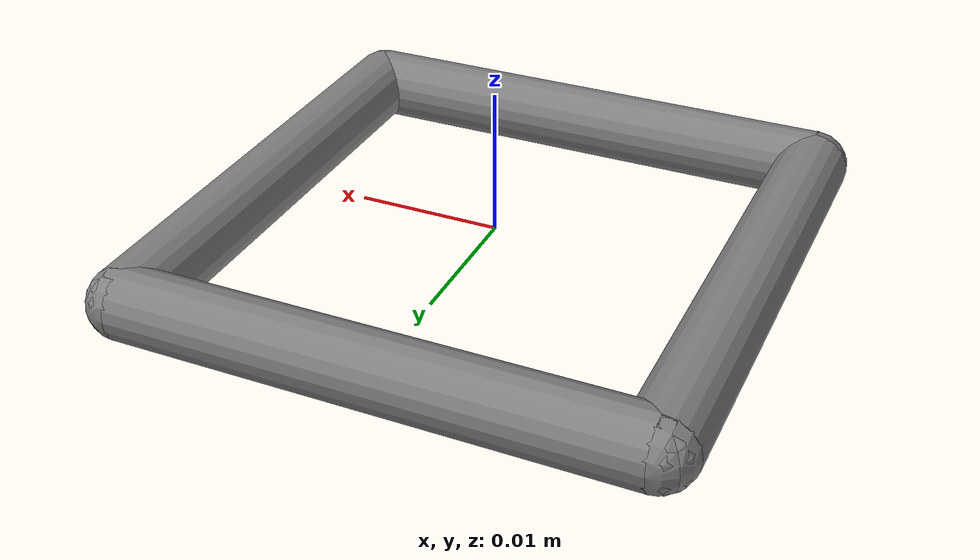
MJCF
<mujoco model="hold">
	<default name="hold">
		<geom type="capsule" size="0.0025" />
	</default>
	<worldbody>
		<body name="hold" pos="0.0 0.0 0.0">
			<geom name="hold_seg_1" type="capsule" fromto=".0175 .0175 .0 -.0175 .0175 .0"/>
			<geom name="hold_seg_2" type="capsule" fromto=".0175 .0175 .0 .0175 -.0175 .0"/>
			<geom name="hold_seg_3" type="capsule" fromto="-.0175 -.0175 .0 -.0175 .0175 .0"/>
			<geom name="hold_seg_4" type="capsule" fromto="-.0175 -.0175 .0 .0175 -.0175 .0"/>
		</body>
	</worldbody>
</mujoco>
